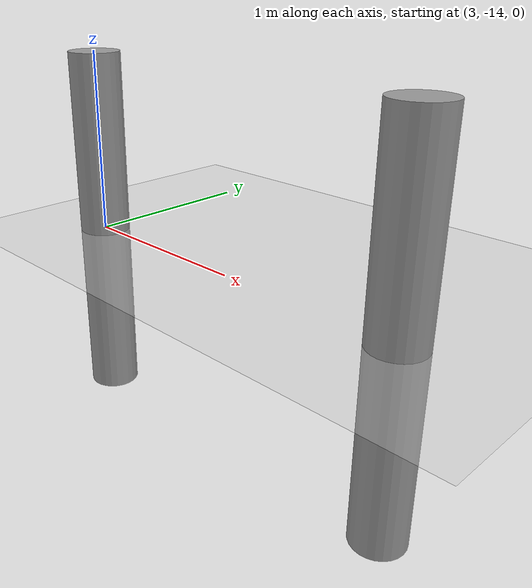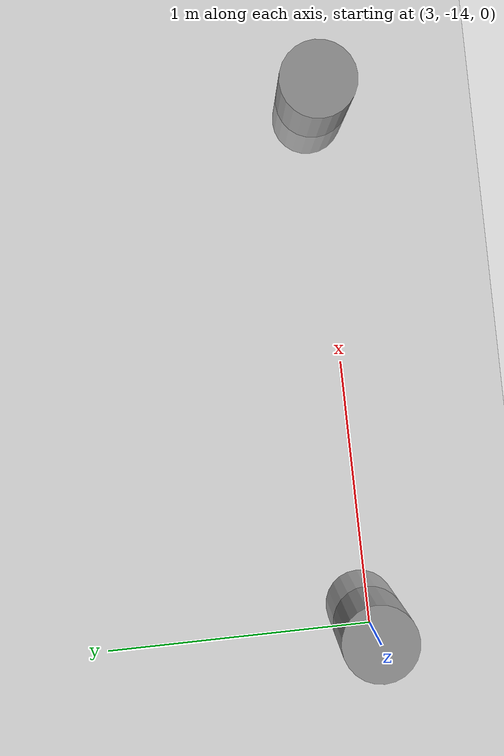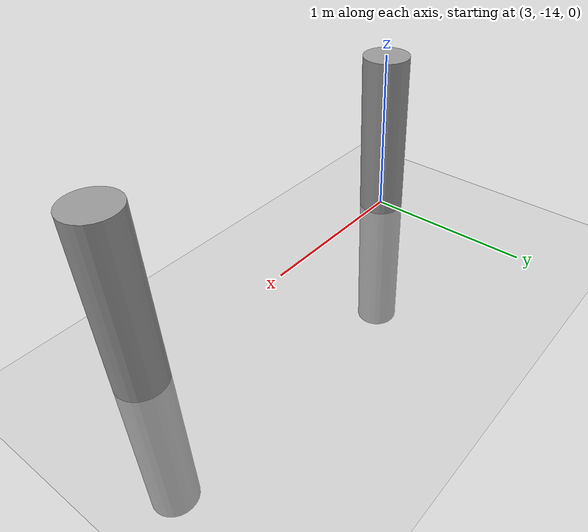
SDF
<sdf version="1.6">
 <world name="default">
  <model name="ground_plane">
   <static>1</static>
   <link name="link">
    <collision name="collision">
     <geometry><plane><normal>0 0 1</normal><size>100 100</size></plane></geometry>
     <surface><friction><ode><mu>100</mu><mu2>50</mu2></ode></friction></surface>
    </collision>
    <visual name="visual">
     <cast_shadows>0</cast_shadows>
     <geometry><plane><normal>0 0 1</normal><size>100 100</size></plane></geometry>
     <material>
      <script><uri>file://media/materials/scripts/gazebo.material</uri><name>Gazebo/Grey</name></script>
     </material>
    </visual>
   </link>
  </model>
  <model name="my_cylinder014_clone_10">
   <pose>5 -14 0 0 -0 0</pose>
   <link name="my_cylinder014::link">
    <inertial>
     <mass>1</mass>
     <inertia><ixx>0.145833</ixx><ixy>0</ixy><ixz>0</ixz><iyy>0.145833</iyy><iyz>0</iyz><izz>0.125</izz></inertia>
    </inertial>
    <visual name="visual">
     <geometry><cylinder><radius>0.14</radius><length>2</length></cylinder></geometry>
     <material>
      <script><name>Gazebo/Grey</name><uri>file://media/materials/scripts/gazebo.material</uri></script>
      <ambient>0.3 0.3 0.3 1</ambient>
      <diffuse>0.7 0.7 0.7 1</diffuse>
      <specular>1 0.01 0.01 1</specular>
      <emissive>0 0 0 1</emissive>
      <shader type="vertex"><normal_map>__default__</normal_map></shader>
     </material>
    </visual>
    <collision name="collision">
     <geometry><cylinder><radius>0.14</radius><length>2</length></cylinder></geometry>
     <surface>
      <friction>
       <ode><mu>1</mu><mu2>1</mu2><fdir1>0 0 0</fdir1><slip1>0</slip1><slip2>0</slip2></ode>
       <torsional>
        <coefficient>1</coefficient>
        <patch_radius>0</patch_radius>
        <surface_radius>0</surface_radius>
        <use_patch_radius>1</use_patch_radius>
        <ode><slip>0</slip></ode>
       </torsional>
      </friction>
      <bounce><restitution_coefficient>0</restitution_coefficient><threshold>1e+06</threshold></bounce>
      <contact>
       <collide_without_contact>0</collide_without_contact>
       <collide_without_contact_bitmask>1</collide_without_contact_bitmask>
       <collide_bitmask>1</collide_bitmask>
       <ode>
        <soft_cfm>0</soft_cfm>
        <soft_erp>0.2</soft_erp>
        <kp>1e+13</kp>
        <kd>1</kd>
        <max_vel>0.01</max_vel>
        <min_depth>0</min_depth>
       </ode>
       <bullet>
        <split_impulse>1</split_impulse>
        <split_impulse_penetration_threshold>-0.01</split_impulse_penetration_threshold>
        <soft_cfm>0</soft_cfm>
        <soft_erp>0.2</soft_erp>
        <kp>1e+13</kp>
        <kd>1</kd>
       </bullet>
      </contact>
     </surface>
    </collision>
   </link>
   <static>1</static>
  </model>
  <model name="my_cylinder014_clone_9">
   <pose>3 -14 0 0 -0 0</pose>
   <link name="my_cylinder014::link">
    <inertial>
     <mass>1</mass>
     <inertia><ixx>0.145833</ixx><ixy>0</ixy><ixz>0</ixz><iyy>0.145833</iyy><iyz>0</iyz><izz>0.125</izz></inertia>
    </inertial>
    <visual name="visual">
     <geometry><cylinder><radius>0.14</radius><length>2</length></cylinder></geometry>
     <material>
      <script><name>Gazebo/Grey</name><uri>file://media/materials/scripts/gazebo.material</uri></script>
      <ambient>0.3 0.3 0.3 1</ambient>
      <diffuse>0.7 0.7 0.7 1</diffuse>
      <specular>1 0.01 0.01 1</specular>
      <emissive>0 0 0 1</emissive>
      <shader type="vertex"><normal_map>__default__</normal_map></shader>
     </material>
    </visual>
    <collision name="collision">
     <geometry><cylinder><radius>0.14</radius><length>2</length></cylinder></geometry>
     <surface>
      <friction>
       <ode><mu>1</mu><mu2>1</mu2><fdir1>0 0 0</fdir1><slip1>0</slip1><slip2>0</slip2></ode>
       <torsional>
        <coefficient>1</coefficient>
        <patch_radius>0</patch_radius>
        <surface_radius>0</surface_radius>
        <use_patch_radius>1</use_patch_radius>
        <ode><slip>0</slip></ode>
       </torsional>
      </friction>
      <bounce><restitution_coefficient>0</restitution_coefficient><threshold>1e+06</threshold></bounce>
      <contact>
       <collide_without_contact>0</collide_without_contact>
       <collide_without_contact_bitmask>1</collide_without_contact_bitmask>
       <collide_bitmask>1</collide_bitmask>
       <ode>
        <soft_cfm>0</soft_cfm>
        <soft_erp>0.2</soft_erp>
        <kp>1e+13</kp>
        <kd>1</kd>
        <max_vel>0.01</max_vel>
        <min_depth>0</min_depth>
       </ode>
       <bullet>
        <split_impulse>1</split_impulse>
        <split_impulse_penetration_threshold>-0.01</split_impulse_penetration_threshold>
        <soft_cfm>0</soft_cfm>
        <soft_erp>0.2</soft_erp>
        <kp>1e+13</kp>
        <kd>1</kd>
       </bullet>
      </contact>
     </surface>
    </collision>
   </link>
   <static>1</static>
  </model>
  <model name="my_cylinder014_clone_9">
   <pose>3 -14 0 0 -0 0</pose>
   <link name="my_cylinder014::link">
    <inertial>
     <mass>1</mass>
     <inertia><ixx>0.145833</ixx><ixy>0</ixy><ixz>0</ixz><iyy>0.145833</iyy><iyz>0</iyz><izz>0.125</izz></inertia>
    </inertial>
    <visual name="visual">
     <geometry><cylinder><radius>0.14</radius><length>2</length></cylinder></geometry>
     <material>
      <script><name>Gazebo/Grey</name><uri>file://media/materials/scripts/gazebo.material</uri></script>
      <ambient>0.3 0.3 0.3 1</ambient>
      <diffuse>0.7 0.7 0.7 1</diffuse>
      <specular>1 0.01 0.01 1</specular>
      <emissive>0 0 0 1</emissive>
      <shader type="vertex"><normal_map>__default__</normal_map></shader>
     </material>
    </visual>
    <collision name="collision">
     <geometry><cylinder><radius>0.14</radius><length>2</length></cylinder></geometry>
     <surface>
      <friction>
       <ode><mu>1</mu><mu2>1</mu2><fdir1>0 0 0</fdir1><slip1>0</slip1><slip2>0</slip2></ode>
       <torsional>
        <coefficient>1</coefficient>
        <patch_radius>0</patch_radius>
        <surface_radius>0</surface_radius>
        <use_patch_radius>1</use_patch_radius>
        <ode><slip>0</slip></ode>
       </torsional>
      </friction>
      <bounce><restitution_coefficient>0</restitution_coefficient><threshold>1e+06</threshold></bounce>
      <contact>
       <collide_without_contact>0</collide_without_contact>
       <collide_without_contact_bitmask>1</collide_without_contact_bitmask>
       <collide_bitmask>1</collide_bitmask>
       <ode>
        <soft_cfm>0</soft_cfm>
        <soft_erp>0.2</soft_erp>
        <kp>1e+13</kp>
        <kd>1</kd>
        <max_vel>0.01</max_vel>
        <min_depth>0</min_depth>
       </ode>
       <bullet>
        <split_impulse>1</split_impulse>
        <split_impulse_penetration_threshold>-0.01</split_impulse_penetration_threshold>
        <soft_cfm>0</soft_cfm>
        <soft_erp>0.2</soft_erp>
        <kp>1e+13</kp>
        <kd>1</kd>
       </bullet>
      </contact>
     </surface>
    </collision>
   </link>
   <static>1</static>
  </model>
 </world>
</sdf>
